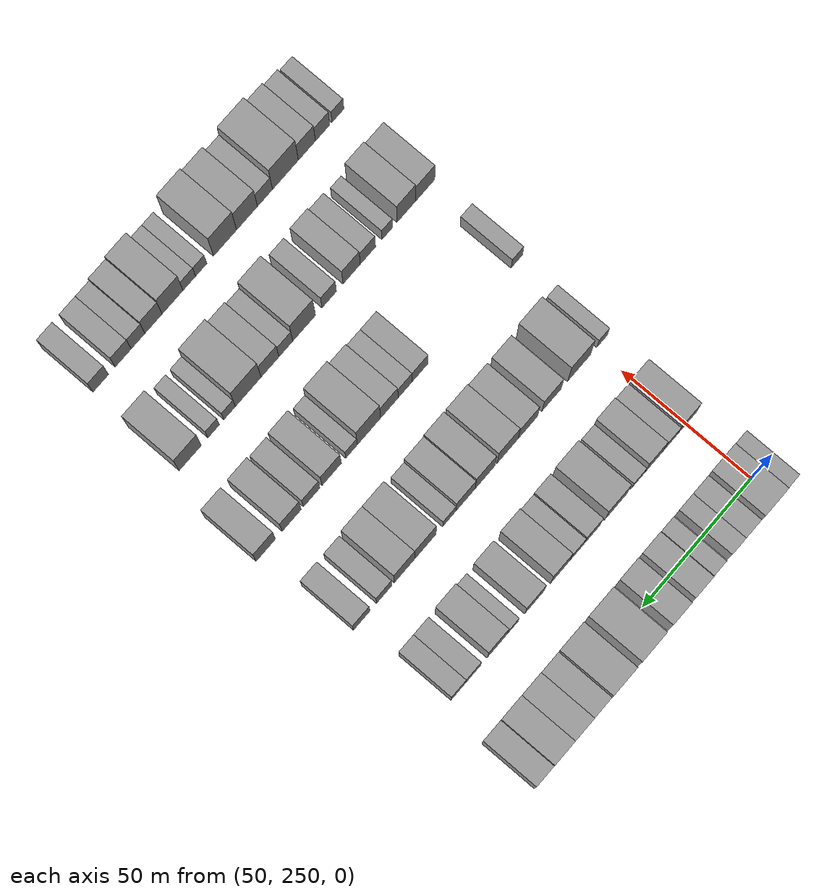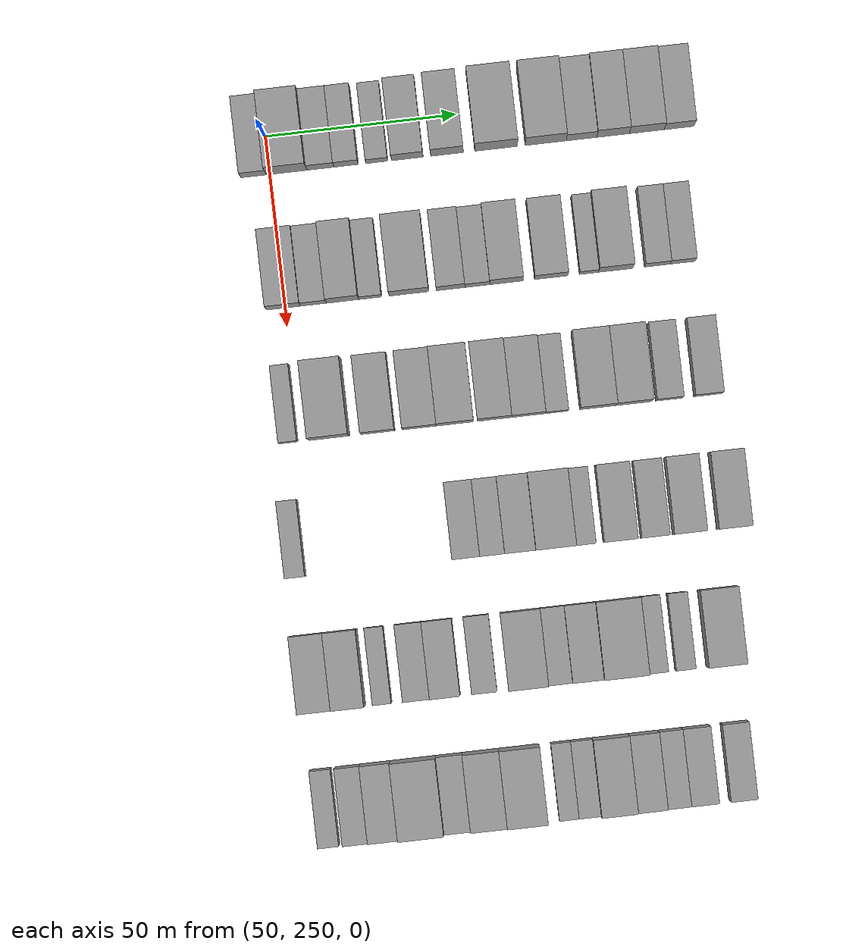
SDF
<sdf version="1.6">
 <world name="default">
  <model name="building_81">
   <static>1</static>
   <pose>50.0000 245.8114 0 0.000000 0.000000 0.000000</pose>
   <link name="link">
    <pose>0 0 7.50 0 0 0</pose>
    <collision name="collision"><geometry><box><size>20.0000 6.7012 15.0000</size></box></geometry></collision>
    <visual name="visual">
     <cast_shadows>0</cast_shadows>
     <geometry><box><size>20.0000 6.7012 15.0000</size></box></geometry>
     <material>
      <script>
       <uri>model://grey_wall/materials/scripts</uri>
       <uri>model://grey_wall/materials/textures</uri>
       <name>vrc/grey_wall</name>
      </script>
     </material>
    </visual>
   </link>
  </model>
  <model name="building_82">
   <static>1</static>
   <pose>50.0000 254.4853 0 0.000000 0.000000 0.000000</pose>
   <link name="link">
    <pose>0 0 12.00 0 0 0</pose>
    <collision name="collision"><geometry><box><size>20.0000 10.6465 24.0000</size></box></geometry></collision>
    <visual name="visual">
     <cast_shadows>0</cast_shadows>
     <geometry><box><size>20.0000 10.6465 24.0000</size></box></geometry>
     <material>
      <script>
       <uri>model://grey_wall/materials/scripts</uri>
       <uri>model://grey_wall/materials/textures</uri>
       <name>vrc/grey_wall</name>
      </script>
     </material>
    </visual>
   </link>
  </model>
  <model name="building_83">
   <static>1</static>
   <pose>50.0000 263.3288 0 0.000000 0.000000 0.000000</pose>
   <link name="link">
    <pose>0 0 7.50 0 0 0</pose>
    <collision name="collision"><geometry><box><size>20.0000 7.0406 15.0000</size></box></geometry></collision>
    <visual name="visual">
     <cast_shadows>0</cast_shadows>
     <geometry><box><size>20.0000 7.0406 15.0000</size></box></geometry>
     <material>
      <script>
       <uri>model://grey_wall/materials/scripts</uri>
       <uri>model://grey_wall/materials/textures</uri>
       <name>vrc/grey_wall</name>
      </script>
     </material>
    </visual>
   </link>
  </model>
  <model name="building_84">
   <static>1</static>
   <pose>50.0000 270.0335 0 0.000000 0.000000 0.000000</pose>
   <link name="link">
    <pose>0 0 7.50 0 0 0</pose>
    <collision name="collision"><geometry><box><size>20.0000 6.3689 15.0000</size></box></geometry></collision>
    <visual name="visual">
     <cast_shadows>0</cast_shadows>
     <geometry><box><size>20.0000 6.3689 15.0000</size></box></geometry>
     <material>
      <script>
       <uri>model://grey_wall/materials/scripts</uri>
       <uri>model://grey_wall/materials/textures</uri>
       <name>vrc/grey_wall</name>
      </script>
     </material>
    </visual>
   </link>
  </model>
  <model name="building_85">
   <static>1</static>
   <pose>50.0000 278.0711 0 0.000000 0.000000 0.000000</pose>
   <link name="link">
    <pose>0 0 6.00 0 0 0</pose>
    <collision name="collision"><geometry><box><size>20.0000 5.7061 12.0000</size></box></geometry></collision>
    <visual name="visual">
     <cast_shadows>0</cast_shadows>
     <geometry><box><size>20.0000 5.7061 12.0000</size></box></geometry>
     <material>
      <script>
       <uri>model://grey_wall/materials/scripts</uri>
       <uri>model://grey_wall/materials/textures</uri>
       <name>vrc/grey_wall</name>
      </script>
     </material>
    </visual>
   </link>
  </model>
  <model name="building_86">
   <static>1</static>
   <pose>50.0000 286.0425 0 0.000000 0.000000 0.000000</pose>
   <link name="link">
    <pose>0 0 9.00 0 0 0</pose>
    <collision name="collision"><geometry><box><size>20.0000 8.2366 18.0000</size></box></geometry></collision>
    <visual name="visual">
     <cast_shadows>0</cast_shadows>
     <geometry><box><size>20.0000 8.2366 18.0000</size></box></geometry>
     <material>
      <script>
       <uri>model://grey_wall/materials/scripts</uri>
       <uri>model://grey_wall/materials/textures</uri>
       <name>vrc/grey_wall</name>
      </script>
     </material>
    </visual>
   </link>
  </model>
  <model name="building_87">
   <static>1</static>
   <pose>50.0000 296.4243 0 0.000000 0.000000 0.000000</pose>
   <link name="link">
    <pose>0 0 10.50 0 0 0</pose>
    <collision name="collision"><geometry><box><size>20.0000 8.5270 21.0000</size></box></geometry></collision>
    <visual name="visual">
     <cast_shadows>0</cast_shadows>
     <geometry><box><size>20.0000 8.5270 21.0000</size></box></geometry>
     <material>
      <script>
       <uri>model://grey_wall/materials/scripts</uri>
       <uri>model://grey_wall/materials/textures</uri>
       <name>vrc/grey_wall</name>
      </script>
     </material>
    </visual>
   </link>
  </model>
  <model name="building_88">
   <static>1</static>
   <pose>50.0000 309.2756 0 0.000000 0.000000 0.000000</pose>
   <link name="link">
    <pose>0 0 12.00 0 0 0</pose>
    <collision name="collision"><geometry><box><size>20.0000 11.1756 24.0000</size></box></geometry></collision>
    <visual name="visual">
     <cast_shadows>0</cast_shadows>
     <geometry><box><size>20.0000 11.1756 24.0000</size></box></geometry>
     <material>
      <script>
       <uri>model://grey_wall/materials/scripts</uri>
       <uri>model://grey_wall/materials/textures</uri>
       <name>vrc/grey_wall</name>
      </script>
     </material>
    </visual>
   </link>
  </model>
  <model name="building_89">
   <static>1</static>
   <pose>50.0000 322.2462 0 0.000000 0.000000 0.000000</pose>
   <link name="link">
    <pose>0 0 12.00 0 0 0</pose>
    <collision name="collision"><geometry><box><size>20.0000 10.7656 24.0000</size></box></geometry></collision>
    <visual name="visual">
     <cast_shadows>0</cast_shadows>
     <geometry><box><size>20.0000 10.7656 24.0000</size></box></geometry>
     <material>
      <script>
       <uri>model://grey_wall/materials/scripts</uri>
       <uri>model://grey_wall/materials/textures</uri>
       <name>vrc/grey_wall</name>
      </script>
     </material>
    </visual>
   </link>
  </model>
  <model name="building_90">
   <static>1</static>
   <pose>50.0000 331.6155 0 0.000000 0.000000 0.000000</pose>
   <link name="link">
    <pose>0 0 9.00 0 0 0</pose>
    <collision name="collision"><geometry><box><size>20.0000 7.9730 18.0000</size></box></geometry></collision>
    <visual name="visual">
     <cast_shadows>0</cast_shadows>
     <geometry><box><size>20.0000 7.9730 18.0000</size></box></geometry>
     <material>
      <script>
       <uri>model://grey_wall/materials/scripts</uri>
       <uri>model://grey_wall/materials/textures</uri>
       <name>vrc/grey_wall</name>
      </script>
     </material>
    </visual>
   </link>
  </model>
  <model name="building_91">
   <static>1</static>
   <pose>50.0000 339.8878 0 0.000000 0.000000 0.000000</pose>
   <link name="link">
    <pose>0 0 10.50 0 0 0</pose>
    <collision name="collision"><geometry><box><size>20.0000 8.5716 21.0000</size></box></geometry></collision>
    <visual name="visual">
     <cast_shadows>0</cast_shadows>
     <geometry><box><size>20.0000 8.5716 21.0000</size></box></geometry>
     <material>
      <script>
       <uri>model://grey_wall/materials/scripts</uri>
       <uri>model://grey_wall/materials/textures</uri>
       <name>vrc/grey_wall</name>
      </script>
     </material>
    </visual>
   </link>
  </model>
  <model name="building_92">
   <static>1</static>
   <pose>50.0000 348.7212 0 0.000000 0.000000 0.000000</pose>
   <link name="link">
    <pose>0 0 10.50 0 0 0</pose>
    <collision name="collision"><geometry><box><size>20.0000 9.0951 21.0000</size></box></geometry></collision>
    <visual name="visual">
     <cast_shadows>0</cast_shadows>
     <geometry><box><size>20.0000 9.0951 21.0000</size></box></geometry>
     <material>
      <script>
       <uri>model://grey_wall/materials/scripts</uri>
       <uri>model://grey_wall/materials/textures</uri>
       <name>vrc/grey_wall</name>
      </script>
     </material>
    </visual>
   </link>
  </model>
  <model name="building_93">
   <static>1</static>
   <pose>50.0000 357.1975 0 0.000000 0.000000 0.000000</pose>
   <link name="link">
    <pose>0 0 9.00 0 0 0</pose>
    <collision name="collision"><geometry><box><size>20.0000 7.8576 18.0000</size></box></geometry></collision>
    <visual name="visual">
     <cast_shadows>0</cast_shadows>
     <geometry><box><size>20.0000 7.8576 18.0000</size></box></geometry>
     <material>
      <script>
       <uri>model://grey_wall/materials/scripts</uri>
       <uri>model://grey_wall/materials/textures</uri>
       <name>vrc/grey_wall</name>
      </script>
     </material>
    </visual>
   </link>
  </model>
  <model name="building_206">
   <static>1</static>
   <pose>85.0000 249.8046 0 0.000000 0.000000 0.000000</pose>
   <link name="link">
    <pose>0 0 9.00 0 0 0</pose>
    <collision name="collision"><geometry><box><size>20.0000 8.9117 18.0000</size></box></geometry></collision>
    <visual name="visual">
     <cast_shadows>0</cast_shadows>
     <geometry><box><size>20.0000 8.9117 18.0000</size></box></geometry>
     <material>
      <script>
       <uri>model://grey_wall/materials/scripts</uri>
       <uri>model://grey_wall/materials/textures</uri>
       <name>vrc/grey_wall</name>
      </script>
     </material>
    </visual>
   </link>
  </model>
  <model name="building_207">
   <static>1</static>
   <pose>85.0000 257.6272 0 0.000000 0.000000 0.000000</pose>
   <link name="link">
    <pose>0 0 7.50 0 0 0</pose>
    <collision name="collision"><geometry><box><size>20.0000 6.7334 15.0000</size></box></geometry></collision>
    <visual name="visual">
     <cast_shadows>0</cast_shadows>
     <geometry><box><size>20.0000 6.7334 15.0000</size></box></geometry>
     <material>
      <script>
       <uri>model://grey_wall/materials/scripts</uri>
       <uri>model://grey_wall/materials/textures</uri>
       <name>vrc/grey_wall</name>
      </script>
     </material>
    </visual>
   </link>
  </model>
  <model name="building_208">
   <static>1</static>
   <pose>85.0000 265.2273 0 0.000000 0.000000 0.000000</pose>
   <link name="link">
    <pose>0 0 10.50 0 0 0</pose>
    <collision name="collision"><geometry><box><size>20.0000 8.4666 21.0000</size></box></geometry></collision>
    <visual name="visual">
     <cast_shadows>0</cast_shadows>
     <geometry><box><size>20.0000 8.4666 21.0000</size></box></geometry>
     <material>
      <script>
       <uri>model://grey_wall/materials/scripts</uri>
       <uri>model://grey_wall/materials/textures</uri>
       <name>vrc/grey_wall</name>
      </script>
     </material>
    </visual>
   </link>
  </model>
  <model name="building_209">
   <static>1</static>
   <pose>85.0000 272.4271 0 0.000000 0.000000 0.000000</pose>
   <link name="link">
    <pose>0 0 6.00 0 0 0</pose>
    <collision name="collision"><geometry><box><size>20.0000 5.9330 12.0000</size></box></geometry></collision>
    <visual name="visual">
     <cast_shadows>0</cast_shadows>
     <geometry><box><size>20.0000 5.9330 12.0000</size></box></geometry>
     <material>
      <script>
       <uri>model://grey_wall/materials/scripts</uri>
       <uri>model://grey_wall/materials/textures</uri>
       <name>vrc/grey_wall</name>
      </script>
     </material>
    </visual>
   </link>
  </model>
  <model name="building_210">
   <static>1</static>
   <pose>85.0000 282.5599 0 0.000000 0.000000 0.000000</pose>
   <link name="link">
    <pose>0 0 10.50 0 0 0</pose>
    <collision name="collision"><geometry><box><size>20.0000 10.3328 21.0000</size></box></geometry></collision>
    <visual name="visual">
     <cast_shadows>0</cast_shadows>
     <geometry><box><size>20.0000 10.3328 21.0000</size></box></geometry>
     <material>
      <script>
       <uri>model://grey_wall/materials/scripts</uri>
       <uri>model://grey_wall/materials/textures</uri>
       <name>vrc/grey_wall</name>
      </script>
     </material>
    </visual>
   </link>
  </model>
  <model name="building_211">
   <static>1</static>
   <pose>85.0000 293.4377 0 0.000000 0.000000 0.000000</pose>
   <link name="link">
    <pose>0 0 9.00 0 0 0</pose>
    <collision name="collision"><geometry><box><size>20.0000 7.4226 18.0000</size></box></geometry></collision>
    <visual name="visual">
     <cast_shadows>0</cast_shadows>
     <geometry><box><size>20.0000 7.4226 18.0000</size></box></geometry>
     <material>
      <script>
       <uri>model://grey_wall/materials/scripts</uri>
       <uri>model://grey_wall/materials/textures</uri>
       <name>vrc/grey_wall</name>
      </script>
     </material>
    </visual>
   </link>
  </model>
  <model name="building_212">
   <static>1</static>
   <pose>85.0000 300.3828 0 0.000000 0.000000 0.000000</pose>
   <link name="link">
    <pose>0 0 7.50 0 0 0</pose>
    <collision name="collision"><geometry><box><size>20.0000 6.4677 15.0000</size></box></geometry></collision>
    <visual name="visual">
     <cast_shadows>0</cast_shadows>
     <geometry><box><size>20.0000 6.4677 15.0000</size></box></geometry>
     <material>
      <script>
       <uri>model://grey_wall/materials/scripts</uri>
       <uri>model://grey_wall/materials/textures</uri>
       <name>vrc/grey_wall</name>
      </script>
     </material>
    </visual>
   </link>
  </model>
  <model name="building_213">
   <static>1</static>
   <pose>85.0000 307.9797 0 0.000000 0.000000 0.000000</pose>
   <link name="link">
    <pose>0 0 10.50 0 0 0</pose>
    <collision name="collision"><geometry><box><size>20.0000 8.7260 21.0000</size></box></geometry></collision>
    <visual name="visual">
     <cast_shadows>0</cast_shadows>
     <geometry><box><size>20.0000 8.7260 21.0000</size></box></geometry>
     <material>
      <script>
       <uri>model://grey_wall/materials/scripts</uri>
       <uri>model://grey_wall/materials/textures</uri>
       <name>vrc/grey_wall</name>
      </script>
     </material>
    </visual>
   </link>
  </model>
  <model name="building_214">
   <static>1</static>
   <pose>85.0000 319.7126 0 0.000000 0.000000 0.000000</pose>
   <link name="link">
    <pose>0 0 9.00 0 0 0</pose>
    <collision name="collision"><geometry><box><size>20.0000 8.7399 18.0000</size></box></geometry></collision>
    <visual name="visual">
     <cast_shadows>0</cast_shadows>
     <geometry><box><size>20.0000 8.7399 18.0000</size></box></geometry>
     <material>
      <script>
       <uri>model://grey_wall/materials/scripts</uri>
       <uri>model://grey_wall/materials/textures</uri>
       <name>vrc/grey_wall</name>
      </script>
     </material>
    </visual>
   </link>
  </model>
  <model name="building_215">
   <static>1</static>
   <pose>85.0000 329.5873 0 0.000000 0.000000 0.000000</pose>
   <link name="link">
    <pose>0 0 6.00 0 0 0</pose>
    <collision name="collision"><geometry><box><size>20.0000 5.0094 12.0000</size></box></geometry></collision>
    <visual name="visual">
     <cast_shadows>0</cast_shadows>
     <geometry><box><size>20.0000 5.0094 12.0000</size></box></geometry>
     <material>
      <script>
       <uri>model://grey_wall/materials/scripts</uri>
       <uri>model://grey_wall/materials/textures</uri>
       <name>vrc/grey_wall</name>
      </script>
     </material>
    </visual>
   </link>
  </model>
  <model name="building_216">
   <static>1</static>
   <pose>85.0000 336.6051 0 0.000000 0.000000 0.000000</pose>
   <link name="link">
    <pose>0 0 10.50 0 0 0</pose>
    <collision name="collision"><geometry><box><size>20.0000 9.0263 21.0000</size></box></geometry></collision>
    <visual name="visual">
     <cast_shadows>0</cast_shadows>
     <geometry><box><size>20.0000 9.0263 21.0000</size></box></geometry>
     <material>
      <script>
       <uri>model://grey_wall/materials/scripts</uri>
       <uri>model://grey_wall/materials/textures</uri>
       <name>vrc/grey_wall</name>
      </script>
     </material>
    </visual>
   </link>
  </model>
  <model name="building_217">
   <static>1</static>
   <pose>85.0000 347.4566 0 0.000000 0.000000 0.000000</pose>
   <link name="link">
    <pose>0 0 7.50 0 0 0</pose>
    <collision name="collision"><geometry><box><size>20.0000 6.6767 15.0000</size></box></geometry></collision>
    <visual name="visual">
     <cast_shadows>0</cast_shadows>
     <geometry><box><size>20.0000 6.6767 15.0000</size></box></geometry>
     <material>
      <script>
       <uri>model://grey_wall/materials/scripts</uri>
       <uri>model://grey_wall/materials/textures</uri>
       <name>vrc/grey_wall</name>
      </script>
     </material>
    </visual>
   </link>
  </model>
  <model name="building_218">
   <static>1</static>
   <pose>85.0000 354.0902 0 0.000000 0.000000 0.000000</pose>
   <link name="link">
    <pose>0 0 7.50 0 0 0</pose>
    <collision name="collision"><geometry><box><size>20.0000 6.5906 15.0000</size></box></geometry></collision>
    <visual name="visual">
     <cast_shadows>0</cast_shadows>
     <geometry><box><size>20.0000 6.5906 15.0000</size></box></geometry>
     <material>
      <script>
       <uri>model://grey_wall/materials/scripts</uri>
       <uri>model://grey_wall/materials/textures</uri>
       <name>vrc/grey_wall</name>
      </script>
     </material>
    </visual>
   </link>
  </model>
  <model name="building_326">
   <static>1</static>
   <pose>120.0000 247.0932 0 0.000000 0.000000 0.000000</pose>
   <link name="link">
    <pose>0 0 6.00 0 0 0</pose>
    <collision name="collision"><geometry><box><size>20.0000 4.8214 12.0000</size></box></geometry></collision>
    <visual name="visual">
     <cast_shadows>0</cast_shadows>
     <geometry><box><size>20.0000 4.8214 12.0000</size></box></geometry>
     <material>
      <script>
       <uri>model://grey_wall/materials/scripts</uri>
       <uri>model://grey_wall/materials/textures</uri>
       <name>vrc/grey_wall</name>
      </script>
     </material>
    </visual>
   </link>
  </model>
  <model name="building_327">
   <static>1</static>
   <pose>120.0000 257.7664 0 0.000000 0.000000 0.000000</pose>
   <link name="link">
    <pose>0 0 12.00 0 0 0</pose>
    <collision name="collision"><geometry><box><size>20.0000 10.5250 24.0000</size></box></geometry></collision>
    <visual name="visual">
     <cast_shadows>0</cast_shadows>
     <geometry><box><size>20.0000 10.5250 24.0000</size></box></geometry>
     <material>
      <script>
       <uri>model://grey_wall/materials/scripts</uri>
       <uri>model://grey_wall/materials/textures</uri>
       <name>vrc/grey_wall</name>
      </script>
     </material>
    </visual>
   </link>
  </model>
  <model name="building_328">
   <static>1</static>
   <pose>120.0000 270.4519 0 0.000000 0.000000 0.000000</pose>
   <link name="link">
    <pose>0 0 9.00 0 0 0</pose>
    <collision name="collision"><geometry><box><size>20.0000 8.8460 18.0000</size></box></geometry></collision>
    <visual name="visual">
     <cast_shadows>0</cast_shadows>
     <geometry><box><size>20.0000 8.8460 18.0000</size></box></geometry>
     <material>
      <script>
       <uri>model://grey_wall/materials/scripts</uri>
       <uri>model://grey_wall/materials/textures</uri>
       <name>vrc/grey_wall</name>
      </script>
     </material>
    </visual>
   </link>
  </model>
  <model name="building_329">
   <static>1</static>
   <pose>120.0000 281.3244 0 0.000000 0.000000 0.000000</pose>
   <link name="link">
    <pose>0 0 9.00 0 0 0</pose>
    <collision name="collision"><geometry><box><size>20.0000 8.8990 18.0000</size></box></geometry></collision>
    <visual name="visual">
     <cast_shadows>0</cast_shadows>
     <geometry><box><size>20.0000 8.8990 18.0000</size></box></geometry>
     <material>
      <script>
       <uri>model://grey_wall/materials/scripts</uri>
       <uri>model://grey_wall/materials/textures</uri>
       <name>vrc/grey_wall</name>
      </script>
     </material>
    </visual>
   </link>
  </model>
  <model name="building_330">
   <static>1</static>
   <pose>120.0000 290.5991 0 0.000000 0.000000 0.000000</pose>
   <link name="link">
    <pose>0 0 10.50 0 0 0</pose>
    <collision name="collision"><geometry><box><size>20.0000 9.6504 21.0000</size></box></geometry></collision>
    <visual name="visual">
     <cast_shadows>0</cast_shadows>
     <geometry><box><size>20.0000 9.6504 21.0000</size></box></geometry>
     <material>
      <script>
       <uri>model://grey_wall/materials/scripts</uri>
       <uri>model://grey_wall/materials/textures</uri>
       <name>vrc/grey_wall</name>
      </script>
     </material>
    </visual>
   </link>
  </model>
  <model name="building_331">
   <static>1</static>
   <pose>120.0000 300.8941 0 0.000000 0.000000 0.000000</pose>
   <link name="link">
    <pose>0 0 10.50 0 0 0</pose>
    <collision name="collision"><geometry><box><size>20.0000 8.9396 21.0000</size></box></geometry></collision>
    <visual name="visual">
     <cast_shadows>0</cast_shadows>
     <geometry><box><size>20.0000 8.9396 21.0000</size></box></geometry>
     <material>
      <script>
       <uri>model://grey_wall/materials/scripts</uri>
       <uri>model://grey_wall/materials/textures</uri>
       <name>vrc/grey_wall</name>
      </script>
     </material>
    </visual>
   </link>
  </model>
  <model name="building_332">
   <static>1</static>
   <pose>120.0000 309.7758 0 0.000000 0.000000 0.000000</pose>
   <link name="link">
    <pose>0 0 9.00 0 0 0</pose>
    <collision name="collision"><geometry><box><size>20.0000 8.8239 18.0000</size></box></geometry></collision>
    <visual name="visual">
     <cast_shadows>0</cast_shadows>
     <geometry><box><size>20.0000 8.8239 18.0000</size></box></geometry>
     <material>
      <script>
       <uri>model://grey_wall/materials/scripts</uri>
       <uri>model://grey_wall/materials/textures</uri>
       <name>vrc/grey_wall</name>
      </script>
     </material>
    </visual>
   </link>
  </model>
  <model name="building_333">
   <static>1</static>
   <pose>120.0000 317.1696 0 0.000000 0.000000 0.000000</pose>
   <link name="link">
    <pose>0 0 6.00 0 0 0</pose>
    <collision name="collision"><geometry><box><size>20.0000 5.9637 12.0000</size></box></geometry></collision>
    <visual name="visual">
     <cast_shadows>0</cast_shadows>
     <geometry><box><size>20.0000 5.9637 12.0000</size></box></geometry>
     <material>
      <script>
       <uri>model://grey_wall/materials/scripts</uri>
       <uri>model://grey_wall/materials/textures</uri>
       <name>vrc/grey_wall</name>
      </script>
     </material>
    </visual>
   </link>
  </model>
  <model name="building_334">
   <static>1</static>
   <pose>120.0000 327.9363 0 0.000000 0.000000 0.000000</pose>
   <link name="link">
    <pose>0 0 10.50 0 0 0</pose>
    <collision name="collision"><geometry><box><size>20.0000 9.5696 21.0000</size></box></geometry></collision>
    <visual name="visual">
     <cast_shadows>0</cast_shadows>
     <geometry><box><size>20.0000 9.5696 21.0000</size></box></geometry>
     <material>
      <script>
       <uri>model://grey_wall/materials/scripts</uri>
       <uri>model://grey_wall/materials/textures</uri>
       <name>vrc/grey_wall</name>
      </script>
     </material>
    </visual>
   </link>
  </model>
  <model name="building_335">
   <static>1</static>
   <pose>120.0000 337.3871 0 0.000000 0.000000 0.000000</pose>
   <link name="link">
    <pose>0 0 10.50 0 0 0</pose>
    <collision name="collision"><geometry><box><size>20.0000 9.3320 21.0000</size></box></geometry></collision>
    <visual name="visual">
     <cast_shadows>0</cast_shadows>
     <geometry><box><size>20.0000 9.3320 21.0000</size></box></geometry>
     <material>
      <script>
       <uri>model://grey_wall/materials/scripts</uri>
       <uri>model://grey_wall/materials/textures</uri>
       <name>vrc/grey_wall</name>
      </script>
     </material>
    </visual>
   </link>
  </model>
  <model name="building_336">
   <static>1</static>
   <pose>120.0000 346.5219 0 0.000000 0.000000 0.000000</pose>
   <link name="link">
    <pose>0 0 7.50 0 0 0</pose>
    <collision name="collision"><geometry><box><size>20.0000 6.9376 15.0000</size></box></geometry></collision>
    <visual name="visual">
     <cast_shadows>0</cast_shadows>
     <geometry><box><size>20.0000 6.9376 15.0000</size></box></geometry>
     <material>
      <script>
       <uri>model://grey_wall/materials/scripts</uri>
       <uri>model://grey_wall/materials/textures</uri>
       <name>vrc/grey_wall</name>
      </script>
     </material>
    </visual>
   </link>
  </model>
  <model name="building_337">
   <static>1</static>
   <pose>120.0000 356.6865 0 0.000000 0.000000 0.000000</pose>
   <link name="link">
    <pose>0 0 7.50 0 0 0</pose>
    <collision name="collision"><geometry><box><size>20.0000 7.3916 15.0000</size></box></geometry></collision>
    <visual name="visual">
     <cast_shadows>0</cast_shadows>
     <geometry><box><size>20.0000 7.3916 15.0000</size></box></geometry>
     <material>
      <script>
       <uri>model://grey_wall/materials/scripts</uri>
       <uri>model://grey_wall/materials/textures</uri>
       <name>vrc/grey_wall</name>
      </script>
     </material>
    </visual>
   </link>
  </model>
  <model name="building_453">
   <static>1</static>
   <pose>155.0000 245.0249 0 0.000000 0.000000 0.000000</pose>
   <link name="link">
    <pose>0 0 6.00 0 0 0</pose>
    <collision name="collision"><geometry><box><size>20.0000 5.2692 12.0000</size></box></geometry></collision>
    <visual name="visual">
     <cast_shadows>0</cast_shadows>
     <geometry><box><size>20.0000 5.2692 12.0000</size></box></geometry>
     <material>
      <script>
       <uri>model://grey_wall/materials/scripts</uri>
       <uri>model://grey_wall/materials/textures</uri>
       <name>vrc/grey_wall</name>
      </script>
     </material>
    </visual>
   </link>
  </model>
  <model name="building_454">
   <static>1</static>
   <pose>155.0000 289.4733 0 0.000000 0.000000 0.000000</pose>
   <link name="link">
    <pose>0 0 7.50 0 0 0</pose>
    <collision name="collision"><geometry><box><size>20.0000 7.2092 15.0000</size></box></geometry></collision>
    <visual name="visual">
     <cast_shadows>0</cast_shadows>
     <geometry><box><size>20.0000 7.2092 15.0000</size></box></geometry>
     <material>
      <script>
       <uri>model://grey_wall/materials/scripts</uri>
       <uri>model://grey_wall/materials/textures</uri>
       <name>vrc/grey_wall</name>
      </script>
     </material>
    </visual>
   </link>
  </model>
  <model name="building_455">
   <static>1</static>
   <pose>155.0000 296.3009 0 0.000000 0.000000 0.000000</pose>
   <link name="link">
    <pose>0 0 7.50 0 0 0</pose>
    <collision name="collision"><geometry><box><size>20.0000 6.4460 15.0000</size></box></geometry></collision>
    <visual name="visual">
     <cast_shadows>0</cast_shadows>
     <geometry><box><size>20.0000 6.4460 15.0000</size></box></geometry>
     <material>
      <script>
       <uri>model://grey_wall/materials/scripts</uri>
       <uri>model://grey_wall/materials/textures</uri>
       <name>vrc/grey_wall</name>
      </script>
     </material>
    </visual>
   </link>
  </model>
  <model name="building_456">
   <static>1</static>
   <pose>155.0000 303.5425 0 0.000000 0.000000 0.000000</pose>
   <link name="link">
    <pose>0 0 9.00 0 0 0</pose>
    <collision name="collision"><geometry><box><size>20.0000 8.0371 18.0000</size></box></geometry></collision>
    <visual name="visual">
     <cast_shadows>0</cast_shadows>
     <geometry><box><size>20.0000 8.0371 18.0000</size></box></geometry>
     <material>
      <script>
       <uri>model://grey_wall/materials/scripts</uri>
       <uri>model://grey_wall/materials/textures</uri>
       <name>vrc/grey_wall</name>
      </script>
     </material>
    </visual>
   </link>
  </model>
  <model name="building_457">
   <static>1</static>
   <pose>155.0000 312.8030 0 0.000000 0.000000 0.000000</pose>
   <link name="link">
    <pose>0 0 12.00 0 0 0</pose>
    <collision name="collision"><geometry><box><size>20.0000 10.4840 24.0000</size></box></geometry></collision>
    <visual name="visual">
     <cast_shadows>0</cast_shadows>
     <geometry><box><size>20.0000 10.4840 24.0000</size></box></geometry>
     <material>
      <script>
       <uri>model://grey_wall/materials/scripts</uri>
       <uri>model://grey_wall/materials/textures</uri>
       <name>vrc/grey_wall</name>
      </script>
     </material>
    </visual>
   </link>
  </model>
  <model name="building_458">
   <static>1</static>
   <pose>155.0000 320.6640 0 0.000000 0.000000 0.000000</pose>
   <link name="link">
    <pose>0 0 6.00 0 0 0</pose>
    <collision name="collision"><geometry><box><size>20.0000 5.2379 12.0000</size></box></geometry></collision>
    <visual name="visual">
     <cast_shadows>0</cast_shadows>
     <geometry><box><size>20.0000 5.2379 12.0000</size></box></geometry>
     <material>
      <script>
       <uri>model://grey_wall/materials/scripts</uri>
       <uri>model://grey_wall/materials/textures</uri>
       <name>vrc/grey_wall</name>
      </script>
     </material>
    </visual>
   </link>
  </model>
  <model name="building_459">
   <static>1</static>
   <pose>155.0000 329.6633 0 0.000000 0.000000 0.000000</pose>
   <link name="link">
    <pose>0 0 9.00 0 0 0</pose>
    <collision name="collision"><geometry><box><size>20.0000 8.7607 18.0000</size></box></geometry></collision>
    <visual name="visual">
     <cast_shadows>0</cast_shadows>
     <geometry><box><size>20.0000 8.7607 18.0000</size></box></geometry>
     <material>
      <script>
       <uri>model://grey_wall/materials/scripts</uri>
       <uri>model://grey_wall/materials/textures</uri>
       <name>vrc/grey_wall</name>
      </script>
     </material>
    </visual>
   </link>
  </model>
  <model name="building_460">
   <static>1</static>
   <pose>155.0000 338.7254 0 0.000000 0.000000 0.000000</pose>
   <link name="link">
    <pose>0 0 7.50 0 0 0</pose>
    <collision name="collision"><geometry><box><size>20.0000 7.3633 15.0000</size></box></geometry></collision>
    <visual name="visual">
     <cast_shadows>0</cast_shadows>
     <geometry><box><size>20.0000 7.3633 15.0000</size></box></geometry>
     <material>
      <script>
       <uri>model://grey_wall/materials/scripts</uri>
       <uri>model://grey_wall/materials/textures</uri>
       <name>vrc/grey_wall</name>
      </script>
     </material>
    </visual>
   </link>
  </model>
  <model name="building_461">
   <static>1</static>
   <pose>155.0000 347.6815 0 0.000000 0.000000 0.000000</pose>
   <link name="link">
    <pose>0 0 9.00 0 0 0</pose>
    <collision name="collision"><geometry><box><size>20.0000 8.5490 18.0000</size></box></geometry></collision>
    <visual name="visual">
     <cast_shadows>0</cast_shadows>
     <geometry><box><size>20.0000 8.5490 18.0000</size></box></geometry>
     <material>
      <script>
       <uri>model://grey_wall/materials/scripts</uri>
       <uri>model://grey_wall/materials/textures</uri>
       <name>vrc/grey_wall</name>
      </script>
     </material>
    </visual>
   </link>
  </model>
  <model name="building_462">
   <static>1</static>
   <pose>155.0000 359.3171 0 0.000000 0.000000 0.000000</pose>
   <link name="link">
    <pose>0 0 9.00 0 0 0</pose>
    <collision name="collision"><geometry><box><size>20.0000 8.7221 18.0000</size></box></geometry></collision>
    <visual name="visual">
     <cast_shadows>0</cast_shadows>
     <geometry><box><size>20.0000 8.7221 18.0000</size></box></geometry>
     <material>
      <script>
       <uri>model://grey_wall/materials/scripts</uri>
       <uri>model://grey_wall/materials/textures</uri>
       <name>vrc/grey_wall</name>
      </script>
     </material>
    </visual>
   </link>
  </model>
  <model name="building_576">
   <static>1</static>
   <pose>190.0000 246.2550 0 0.000000 0.000000 0.000000</pose>
   <link name="link">
    <pose>0 0 9.00 0 0 0</pose>
    <collision name="collision"><geometry><box><size>20.0000 8.8025 18.0000</size></box></geometry></collision>
    <visual name="visual">
     <cast_shadows>0</cast_shadows>
     <geometry><box><size>20.0000 8.8025 18.0000</size></box></geometry>
     <material>
      <script>
       <uri>model://grey_wall/materials/scripts</uri>
       <uri>model://grey_wall/materials/textures</uri>
       <name>vrc/grey_wall</name>
      </script>
     </material>
    </visual>
   </link>
  </model>
  <model name="building_577">
   <static>1</static>
   <pose>190.0000 254.9592 0 0.000000 0.000000 0.000000</pose>
   <link name="link">
    <pose>0 0 10.50 0 0 0</pose>
    <collision name="collision"><geometry><box><size>20.0000 8.6059 21.0000</size></box></geometry></collision>
    <visual name="visual">
     <cast_shadows>0</cast_shadows>
     <geometry><box><size>20.0000 8.6059 21.0000</size></box></geometry>
     <material>
      <script>
       <uri>model://grey_wall/materials/scripts</uri>
       <uri>model://grey_wall/materials/textures</uri>
       <name>vrc/grey_wall</name>
      </script>
     </material>
    </visual>
   </link>
  </model>
  <model name="building_578">
   <static>1</static>
   <pose>190.0000 263.6946 0 0.000000 0.000000 0.000000</pose>
   <link name="link">
    <pose>0 0 6.00 0 0 0</pose>
    <collision name="collision"><geometry><box><size>20.0000 4.8649 12.0000</size></box></geometry></collision>
    <visual name="visual">
     <cast_shadows>0</cast_shadows>
     <geometry><box><size>20.0000 4.8649 12.0000</size></box></geometry>
     <material>
      <script>
       <uri>model://grey_wall/materials/scripts</uri>
       <uri>model://grey_wall/materials/textures</uri>
       <name>vrc/grey_wall</name>
      </script>
     </material>
    </visual>
   </link>
  </model>
  <model name="building_579">
   <static>1</static>
   <pose>190.0000 272.6240 0 0.000000 0.000000 0.000000</pose>
   <link name="link">
    <pose>0 0 7.50 0 0 0</pose>
    <collision name="collision"><geometry><box><size>20.0000 6.9939 15.0000</size></box></geometry></collision>
    <visual name="visual">
     <cast_shadows>0</cast_shadows>
     <geometry><box><size>20.0000 6.9939 15.0000</size></box></geometry>
     <material>
      <script>
       <uri>model://grey_wall/materials/scripts</uri>
       <uri>model://grey_wall/materials/textures</uri>
       <name>vrc/grey_wall</name>
      </script>
     </material>
    </visual>
   </link>
  </model>
  <model name="building_580">
   <static>1</static>
   <pose>190.0000 280.0616 0 0.000000 0.000000 0.000000</pose>
   <link name="link">
    <pose>0 0 9.00 0 0 0</pose>
    <collision name="collision"><geometry><box><size>20.0000 7.8814 18.0000</size></box></geometry></collision>
    <visual name="visual">
     <cast_shadows>0</cast_shadows>
     <geometry><box><size>20.0000 7.8814 18.0000</size></box></geometry>
     <material>
      <script>
       <uri>model://grey_wall/materials/scripts</uri>
       <uri>model://grey_wall/materials/textures</uri>
       <name>vrc/grey_wall</name>
      </script>
     </material>
    </visual>
   </link>
  </model>
  <model name="building_581">
   <static>1</static>
   <pose>190.0000 290.2873 0 0.000000 0.000000 0.000000</pose>
   <link name="link">
    <pose>0 0 7.50 0 0 0</pose>
    <collision name="collision"><geometry><box><size>20.0000 6.5701 15.0000</size></box></geometry></collision>
    <visual name="visual">
     <cast_shadows>0</cast_shadows>
     <geometry><box><size>20.0000 6.5701 15.0000</size></box></geometry>
     <material>
      <script>
       <uri>model://grey_wall/materials/scripts</uri>
       <uri>model://grey_wall/materials/textures</uri>
       <name>vrc/grey_wall</name>
      </script>
     </material>
    </visual>
   </link>
  </model>
  <model name="building_582">
   <static>1</static>
   <pose>190.0000 301.7265 0 0.000000 0.000000 0.000000</pose>
   <link name="link">
    <pose>0 0 12.00 0 0 0</pose>
    <collision name="collision"><geometry><box><size>20.0000 10.3083 24.0000</size></box></geometry></collision>
    <visual name="visual">
     <cast_shadows>0</cast_shadows>
     <geometry><box><size>20.0000 10.3083 24.0000</size></box></geometry>
     <material>
      <script>
       <uri>model://grey_wall/materials/scripts</uri>
       <uri>model://grey_wall/materials/textures</uri>
       <name>vrc/grey_wall</name>
      </script>
     </material>
    </visual>
   </link>
  </model>
  <model name="building_583">
   <static>1</static>
   <pose>190.0000 310.0082 0 0.000000 0.000000 0.000000</pose>
   <link name="link">
    <pose>0 0 7.50 0 0 0</pose>
    <collision name="collision"><geometry><box><size>20.0000 6.2551 15.0000</size></box></geometry></collision>
    <visual name="visual">
     <cast_shadows>0</cast_shadows>
     <geometry><box><size>20.0000 6.2551 15.0000</size></box></geometry>
     <material>
      <script>
       <uri>model://grey_wall/materials/scripts</uri>
       <uri>model://grey_wall/materials/textures</uri>
       <name>vrc/grey_wall</name>
      </script>
     </material>
    </visual>
   </link>
  </model>
  <model name="building_584">
   <static>1</static>
   <pose>190.0000 317.1947 0 0.000000 0.000000 0.000000</pose>
   <link name="link">
    <pose>0 0 9.00 0 0 0</pose>
    <collision name="collision"><geometry><box><size>20.0000 8.1179 18.0000</size></box></geometry></collision>
    <visual name="visual">
     <cast_shadows>0</cast_shadows>
     <geometry><box><size>20.0000 8.1179 18.0000</size></box></geometry>
     <material>
      <script>
       <uri>model://grey_wall/materials/scripts</uri>
       <uri>model://grey_wall/materials/textures</uri>
       <name>vrc/grey_wall</name>
      </script>
     </material>
    </visual>
   </link>
  </model>
  <model name="building_585">
   <static>1</static>
   <pose>190.0000 327.0686 0 0.000000 0.000000 0.000000</pose>
   <link name="link">
    <pose>0 0 12.00 0 0 0</pose>
    <collision name="collision"><geometry><box><size>20.0000 11.6298 24.0000</size></box></geometry></collision>
    <visual name="visual">
     <cast_shadows>0</cast_shadows>
     <geometry><box><size>20.0000 11.6298 24.0000</size></box></geometry>
     <material>
      <script>
       <uri>model://grey_wall/materials/scripts</uri>
       <uri>model://grey_wall/materials/textures</uri>
       <name>vrc/grey_wall</name>
      </script>
     </material>
    </visual>
   </link>
  </model>
  <model name="building_586">
   <static>1</static>
   <pose>190.0000 335.4713 0 0.000000 0.000000 0.000000</pose>
   <link name="link">
    <pose>0 0 6.00 0 0 0</pose>
    <collision name="collision"><geometry><box><size>20.0000 5.1756 12.0000</size></box></geometry></collision>
    <visual name="visual">
     <cast_shadows>0</cast_shadows>
     <geometry><box><size>20.0000 5.1756 12.0000</size></box></geometry>
     <material>
      <script>
       <uri>model://grey_wall/materials/scripts</uri>
       <uri>model://grey_wall/materials/textures</uri>
       <name>vrc/grey_wall</name>
      </script>
     </material>
    </visual>
   </link>
  </model>
  <model name="building_587">
   <static>1</static>
   <pose>190.0000 342.6299 0 0.000000 0.000000 0.000000</pose>
   <link name="link">
    <pose>0 0 6.00 0 0 0</pose>
    <collision name="collision"><geometry><box><size>20.0000 5.1417 12.0000</size></box></geometry></collision>
    <visual name="visual">
     <cast_shadows>0</cast_shadows>
     <geometry><box><size>20.0000 5.1417 12.0000</size></box></geometry>
     <material>
      <script>
       <uri>model://grey_wall/materials/scripts</uri>
       <uri>model://grey_wall/materials/textures</uri>
       <name>vrc/grey_wall</name>
      </script>
     </material>
    </visual>
   </link>
  </model>
  <model name="building_588">
   <static>1</static>
   <pose>190.0000 353.1737 0 0.000000 0.000000 0.000000</pose>
   <link name="link">
    <pose>0 0 10.50 0 0 0</pose>
    <collision name="collision"><geometry><box><size>20.0000 9.9460 21.0000</size></box></geometry></collision>
    <visual name="visual">
     <cast_shadows>0</cast_shadows>
     <geometry><box><size>20.0000 9.9460 21.0000</size></box></geometry>
     <material>
      <script>
       <uri>model://grey_wall/materials/scripts</uri>
       <uri>model://grey_wall/materials/textures</uri>
       <name>vrc/grey_wall</name>
      </script>
     </material>
    </visual>
   </link>
  </model>
  <model name="building_708">
   <static>1</static>
   <pose>225.0000 245.8347 0 0.000000 0.000000 0.000000</pose>
   <link name="link">
    <pose>0 0 6.00 0 0 0</pose>
    <collision name="collision"><geometry><box><size>20.0000 5.4961 12.0000</size></box></geometry></collision>
    <visual name="visual">
     <cast_shadows>0</cast_shadows>
     <geometry><box><size>20.0000 5.4961 12.0000</size></box></geometry>
     <material>
      <script>
       <uri>model://grey_wall/materials/scripts</uri>
       <uri>model://grey_wall/materials/textures</uri>
       <name>vrc/grey_wall</name>
      </script>
     </material>
    </visual>
   </link>
  </model>
  <model name="building_709">
   <static>1</static>
   <pose>225.0000 252.8798 0 0.000000 0.000000 0.000000</pose>
   <link name="link">
    <pose>0 0 7.50 0 0 0</pose>
    <collision name="collision"><geometry><box><size>20.0000 6.5941 15.0000</size></box></geometry></collision>
    <visual name="visual">
     <cast_shadows>0</cast_shadows>
     <geometry><box><size>20.0000 6.5941 15.0000</size></box></geometry>
     <material>
      <script>
       <uri>model://grey_wall/materials/scripts</uri>
       <uri>model://grey_wall/materials/textures</uri>
       <name>vrc/grey_wall</name>
      </script>
     </material>
    </visual>
   </link>
  </model>
  <model name="building_710">
   <static>1</static>
   <pose>225.0000 260.1198 0 0.000000 0.000000 0.000000</pose>
   <link name="link">
    <pose>0 0 9.00 0 0 0</pose>
    <collision name="collision"><geometry><box><size>20.0000 7.8860 18.0000</size></box></geometry></collision>
    <visual name="visual">
     <cast_shadows>0</cast_shadows>
     <geometry><box><size>20.0000 7.8860 18.0000</size></box></geometry>
     <material>
      <script>
       <uri>model://grey_wall/materials/scripts</uri>
       <uri>model://grey_wall/materials/textures</uri>
       <name>vrc/grey_wall</name>
      </script>
     </material>
    </visual>
   </link>
  </model>
  <model name="building_711">
   <static>1</static>
   <pose>225.0000 269.9756 0 0.000000 0.000000 0.000000</pose>
   <link name="link">
    <pose>0 0 12.00 0 0 0</pose>
    <collision name="collision"><geometry><box><size>20.0000 11.8256 24.0000</size></box></geometry></collision>
    <visual name="visual">
     <cast_shadows>0</cast_shadows>
     <geometry><box><size>20.0000 11.8256 24.0000</size></box></geometry>
     <material>
      <script>
       <uri>model://grey_wall/materials/scripts</uri>
       <uri>model://grey_wall/materials/textures</uri>
       <name>vrc/grey_wall</name>
      </script>
     </material>
    </visual>
   </link>
  </model>
  <model name="building_712">
   <static>1</static>
   <pose>225.0000 279.3235 0 0.000000 0.000000 0.000000</pose>
   <link name="link">
    <pose>0 0 7.50 0 0 0</pose>
    <collision name="collision"><geometry><box><size>20.0000 6.8702 15.0000</size></box></geometry></collision>
    <visual name="visual">
     <cast_shadows>0</cast_shadows>
     <geometry><box><size>20.0000 6.8702 15.0000</size></box></geometry>
     <material>
      <script>
       <uri>model://grey_wall/materials/scripts</uri>
       <uri>model://grey_wall/materials/textures</uri>
       <name>vrc/grey_wall</name>
      </script>
     </material>
    </visual>
   </link>
  </model>
  <model name="building_713">
   <static>1</static>
   <pose>225.0000 287.5062 0 0.000000 0.000000 0.000000</pose>
   <link name="link">
    <pose>0 0 10.50 0 0 0</pose>
    <collision name="collision"><geometry><box><size>20.0000 9.4951 21.0000</size></box></geometry></collision>
    <visual name="visual">
     <cast_shadows>0</cast_shadows>
     <geometry><box><size>20.0000 9.4951 21.0000</size></box></geometry>
     <material>
      <script>
       <uri>model://grey_wall/materials/scripts</uri>
       <uri>model://grey_wall/materials/textures</uri>
       <name>vrc/grey_wall</name>
      </script>
     </material>
    </visual>
   </link>
  </model>
  <model name="building_714">
   <static>1</static>
   <pose>225.0000 297.5201 0 0.000000 0.000000 0.000000</pose>
   <link name="link">
    <pose>0 0 12.00 0 0 0</pose>
    <collision name="collision"><geometry><box><size>20.0000 10.5328 24.0000</size></box></geometry></collision>
    <visual name="visual">
     <cast_shadows>0</cast_shadows>
     <geometry><box><size>20.0000 10.5328 24.0000</size></box></geometry>
     <material>
      <script>
       <uri>model://grey_wall/materials/scripts</uri>
       <uri>model://grey_wall/materials/textures</uri>
       <name>vrc/grey_wall</name>
      </script>
     </material>
    </visual>
   </link>
  </model>
  <model name="building_715">
   <static>1</static>
   <pose>225.0000 308.3345 0 0.000000 0.000000 0.000000</pose>
   <link name="link">
    <pose>0 0 6.00 0 0 0</pose>
    <collision name="collision"><geometry><box><size>20.0000 5.0959 12.0000</size></box></geometry></collision>
    <visual name="visual">
     <cast_shadows>0</cast_shadows>
     <geometry><box><size>20.0000 5.0959 12.0000</size></box></geometry>
     <material>
      <script>
       <uri>model://grey_wall/materials/scripts</uri>
       <uri>model://grey_wall/materials/textures</uri>
       <name>vrc/grey_wall</name>
      </script>
     </material>
    </visual>
   </link>
  </model>
  <model name="building_716">
   <static>1</static>
   <pose>225.0000 313.7428 0 0.000000 0.000000 0.000000</pose>
   <link name="link">
    <pose>0 0 6.00 0 0 0</pose>
    <collision name="collision"><geometry><box><size>20.0000 5.7206 12.0000</size></box></geometry></collision>
    <visual name="visual">
     <cast_shadows>0</cast_shadows>
     <geometry><box><size>20.0000 5.7206 12.0000</size></box></geometry>
     <material>
      <script>
       <uri>model://grey_wall/materials/scripts</uri>
       <uri>model://grey_wall/materials/textures</uri>
       <name>vrc/grey_wall</name>
      </script>
     </material>
    </visual>
   </link>
  </model>
  <model name="building_717">
   <static>1</static>
   <pose>225.0000 321.3160 0 0.000000 0.000000 0.000000</pose>
   <link name="link">
    <pose>0 0 10.50 0 0 0</pose>
    <collision name="collision"><geometry><box><size>20.0000 9.4258 21.0000</size></box></geometry></collision>
    <visual name="visual">
     <cast_shadows>0</cast_shadows>
     <geometry><box><size>20.0000 9.4258 21.0000</size></box></geometry>
     <material>
      <script>
       <uri>model://grey_wall/materials/scripts</uri>
       <uri>model://grey_wall/materials/textures</uri>
       <name>vrc/grey_wall</name>
      </script>
     </material>
    </visual>
   </link>
  </model>
  <model name="building_718">
   <static>1</static>
   <pose>225.0000 329.9011 0 0.000000 0.000000 0.000000</pose>
   <link name="link">
    <pose>0 0 9.00 0 0 0</pose>
    <collision name="collision"><geometry><box><size>20.0000 7.7444 18.0000</size></box></geometry></collision>
    <visual name="visual">
     <cast_shadows>0</cast_shadows>
     <geometry><box><size>20.0000 7.7444 18.0000</size></box></geometry>
     <material>
      <script>
       <uri>model://grey_wall/materials/scripts</uri>
       <uri>model://grey_wall/materials/textures</uri>
       <name>vrc/grey_wall</name>
      </script>
     </material>
    </visual>
   </link>
  </model>
  <model name="building_719">
   <static>1</static>
   <pose>225.0000 336.8537 0 0.000000 0.000000 0.000000</pose>
   <link name="link">
    <pose>0 0 7.50 0 0 0</pose>
    <collision name="collision"><geometry><box><size>20.0000 6.1607 15.0000</size></box></geometry></collision>
    <visual name="visual">
     <cast_shadows>0</cast_shadows>
     <geometry><box><size>20.0000 6.1607 15.0000</size></box></geometry>
     <material>
      <script>
       <uri>model://grey_wall/materials/scripts</uri>
       <uri>model://grey_wall/materials/textures</uri>
       <name>vrc/grey_wall</name>
      </script>
     </material>
    </visual>
   </link>
  </model>
  <model name="building_720">
   <static>1</static>
   <pose>225.0000 343.5324 0 0.000000 0.000000 0.000000</pose>
   <link name="link">
    <pose>0 0 7.50 0 0 0</pose>
    <collision name="collision"><geometry><box><size>20.0000 7.1967 15.0000</size></box></geometry></collision>
    <visual name="visual">
     <cast_shadows>0</cast_shadows>
     <geometry><box><size>20.0000 7.1967 15.0000</size></box></geometry>
     <material>
      <script>
       <uri>model://grey_wall/materials/scripts</uri>
       <uri>model://grey_wall/materials/textures</uri>
       <name>vrc/grey_wall</name>
      </script>
     </material>
    </visual>
   </link>
  </model>
  <model name="building_721">
   <static>1</static>
   <pose>225.0000 353.6036 0 0.000000 0.000000 0.000000</pose>
   <link name="link">
    <pose>0 0 7.50 0 0 0</pose>
    <collision name="collision"><geometry><box><size>20.0000 6.9458 15.0000</size></box></geometry></collision>
    <visual name="visual">
     <cast_shadows>0</cast_shadows>
     <geometry><box><size>20.0000 6.9458 15.0000</size></box></geometry>
     <material>
      <script>
       <uri>model://grey_wall/materials/scripts</uri>
       <uri>model://grey_wall/materials/textures</uri>
       <name>vrc/grey_wall</name>
      </script>
     </material>
    </visual>
   </link>
  </model>
 </world>
</sdf>
